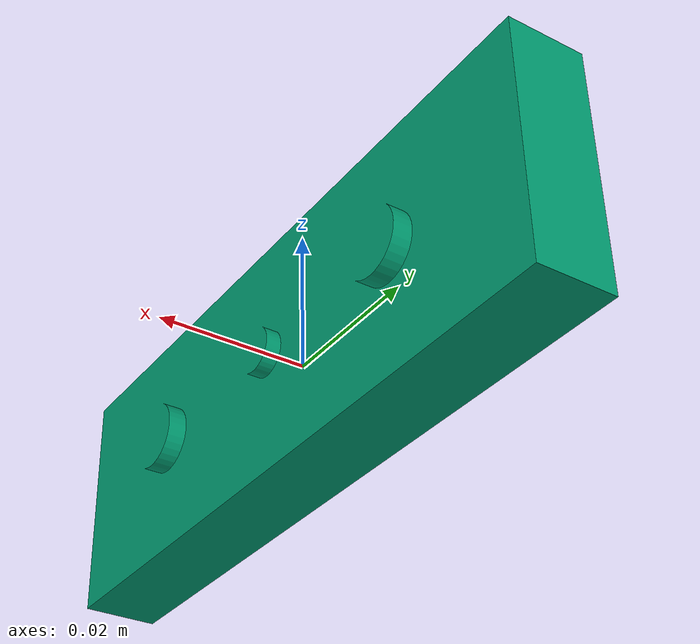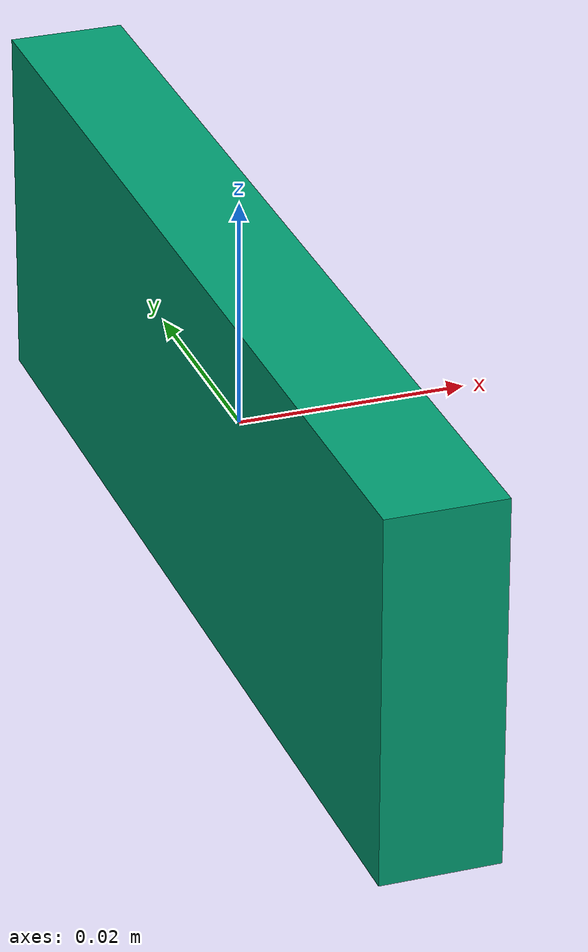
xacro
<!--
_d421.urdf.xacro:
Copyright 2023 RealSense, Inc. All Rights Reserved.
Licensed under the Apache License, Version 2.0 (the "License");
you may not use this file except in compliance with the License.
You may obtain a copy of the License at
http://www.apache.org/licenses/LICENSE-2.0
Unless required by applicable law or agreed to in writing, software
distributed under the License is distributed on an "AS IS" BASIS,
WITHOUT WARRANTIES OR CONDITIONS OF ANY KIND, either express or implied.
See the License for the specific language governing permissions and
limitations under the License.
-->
<?xml version="1.0"?>
<robot name="realsense2_camera" xmlns:xacro="http://ros.org/wiki/xacro">
  <xacro:arg name="use_nominal_extrinsics" default="false"/>
  <xacro:include filename="$(find realsense2_description)/urdf/_d421.urdf.xacro" />

  <link name="base_link" />
  <xacro:sensor_d421 parent="base_link" use_nominal_extrinsics="$(arg use_nominal_extrinsics)">
    <origin xyz="0 0 0" rpy="0 0 0"/>
  </xacro:sensor_d421>
</robot>

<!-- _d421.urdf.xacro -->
<!--
This is the URDF model for the RealSense Depth Module D421, a single-board
stereo depth module (dual IR imagers + IR projector, no RGB, no IMU).
See D421 Datasheet v1.1.
-->

<robot name="sensor_d421" xmlns:xacro="http://ros.org/wiki/xacro">
  <!-- Includes -->
  <xacro:include filename="$(find realsense2_description)/urdf/_materials.urdf.xacro" />
  <xacro:include filename="$(find realsense2_description)/urdf/_usb_plug.urdf.xacro" />

  <xacro:macro name="sensor_d421" params="parent *origin name:=camera use_nominal_extrinsics:=false">
    <xacro:arg name="add_plug" default="false" />
    <xacro:property name="M_PI" value="3.1415926535897931" />

    <!-- The following values are approximate, and the camera node
     publishing TF values with actual calibrated camera extrinsic values -->
    <!-- Depth origin is the centre of the left (infra1) imager; baseline is 50 mm -->
    <xacro:property name="d421_cam_depth_to_infra1_offset" value="0.0"/>
    <xacro:property name="d421_cam_depth_to_infra2_offset" value="-0.050"/>

    <xacro:property name="d421_cam_width" value="0.095"/>
    <xacro:property name="d421_cam_height" value="0.032"/>
    <xacro:property name="d421_cam_depth" value="0.0102"/>
    <!-- module datum at board centre, so the front face is half the board depth forward -->
    <xacro:property name="d421_cam_mount_from_center_offset" value="0.0051"/>
    <!-- glass cover is 0.1 mm inwards from front plate -->
    <xacro:property name="d421_glass_to_front" value="0.1e-3"/>
    <!-- approximate distance from depth ground-zero to front glass (update from mechanical drawing) -->
    <xacro:property name="d421_zero_depth_to_glass" value="4.2e-3"/>
    <!-- convenience precomputation to avoid clutter-->
    <xacro:property name="d421_mesh_x_offset" value="${d421_cam_mount_from_center_offset-d421_glass_to_front-d421_zero_depth_to_glass}"/>

    <!-- The following offset is relative to the module datum (board centre) -->
    <xacro:property name="d421_cam_depth_px" value="${d421_cam_mount_from_center_offset}"/>
    <xacro:property name="d421_cam_depth_py" value="0.025"/>
    <xacro:property name="d421_cam_depth_pz" value="0.0"/>

    <!-- camera body, with origin at module datum (board centre) -->
    <joint name="${name}_joint" type="fixed">
      <xacro:insert_block name="origin" />
      <parent link="${parent}"/>
      <child link="${name}_bottom_screw_frame" />
    </joint>
    <link name="${name}_bottom_screw_frame"/>

    <joint name="${name}_link_joint" type="fixed">
      <origin xyz="${d421_mesh_x_offset} ${d421_cam_depth_py} ${d421_cam_depth_pz}" rpy="0 0 0"/>
      <parent link="${name}_bottom_screw_frame"/>
      <child link="${name}_link" />
    </joint>

    <link name="${name}_link">
      <visual>
        <!-- the mesh origin is at front plate in between the two infrared camera axes -->
        <origin xyz="${d421_zero_depth_to_glass + d421_glass_to_front} ${-d421_cam_depth_py} 0" rpy="${M_PI/2} 0 ${M_PI/2}"/>
        <geometry>
	        <mesh filename="package://realsense2_description/meshes/d421.stl" scale="0.001 0.001 0.001" />
        </geometry>
        <material name="aluminum"/>
      </visual>
      <collision>
        <origin xyz="${d421_zero_depth_to_glass-d421_cam_depth/2} ${-d421_cam_depth_py} 0" rpy="0 0 0"/>
        <geometry>
          <box size="${d421_cam_depth} ${d421_cam_width} ${d421_cam_height}"/>
        </geometry>
      </collision>
      <inertial>
        <!-- The following are not reliable values, and should not be used for modeling -->
        <mass value="0.0375" />
        <origin xyz="0 0 0" />
        <inertia ixx="0.003881243" ixy="0.0" ixz="0.0" iyy="0.000498940" iyz="0.0" izz="0.003879257" />
      </inertial>
    </link>

    <!-- Use the nominal extrinsics between camera frames if the calibrated extrinsics aren't being published. e.g. running the device in simulation  -->
    <xacro:if value="${use_nominal_extrinsics}">
      <!-- camera depth joints and links -->
      <joint name="${name}_depth_joint" type="fixed">
        <origin xyz="0 0 0" rpy="0 0 0"/>
        <parent link="${name}_link"/>
        <child link="${name}_depth_frame" />
      </joint>
      <link name="${name}_depth_frame"/>

      <joint name="${name}_depth_optical_joint" type="fixed">
        <origin xyz="0 0 0" rpy="${-M_PI/2} 0 ${-M_PI/2}" />
        <parent link="${name}_depth_frame" />
        <child link="${name}_depth_optical_frame" />
      </joint>
      <link name="${name}_depth_optical_frame"/>

      <!-- camera left IR joints and links -->
      <joint name="${name}_infra1_joint" type="fixed">
        <origin xyz="0 ${d421_cam_depth_to_infra1_offset} 0" rpy="0 0 0" />
        <parent link="${name}_link" />
        <child link="${name}_infra1_frame" />
      </joint>
      <link name="${name}_infra1_frame"/>

      <joint name="${name}_infra1_optical_joint" type="fixed">
        <origin xyz="0 0 0" rpy="${-M_PI/2} 0 ${-M_PI/2}" />
        <parent link="${name}_infra1_frame" />
        <child link="${name}_infra1_optical_frame" />
      </joint>
      <link name="${name}_infra1_optical_frame"/>

      <!-- camera right IR joints and links -->
      <joint name="${name}_infra2_joint" type="fixed">
        <origin xyz="0 ${d421_cam_depth_to_infra2_offset} 0" rpy="0 0 0" />
        <parent link="${name}_link" />
        <child link="${name}_infra2_frame" />
      </joint>
      <link name="${name}_infra2_frame"/>

      <joint name="${name}_infra2_optical_joint" type="fixed">
        <origin xyz="0 0 0" rpy="${-M_PI/2} 0 ${-M_PI/2}" />
        <parent link="${name}_infra2_frame" />
        <child link="${name}_infra2_optical_frame" />
      </joint>
      <link name="${name}_infra2_optical_frame"/>
    </xacro:if>

    <xacro:if value="$(arg add_plug)">
      <!-- USB-C connector on the bottom edge, approximately board-centred -->
      <xacro:usb_plug parent="${name}_link" name="${name}_usb_plug">
        <origin xyz="${-d421_cam_depth_px} ${-d421_cam_depth_py} ${-d421_cam_height/2}" rpy="${M_PI/2} 0 0"/>
      </xacro:usb_plug>
    </xacro:if>
  </xacro:macro>
</robot>
